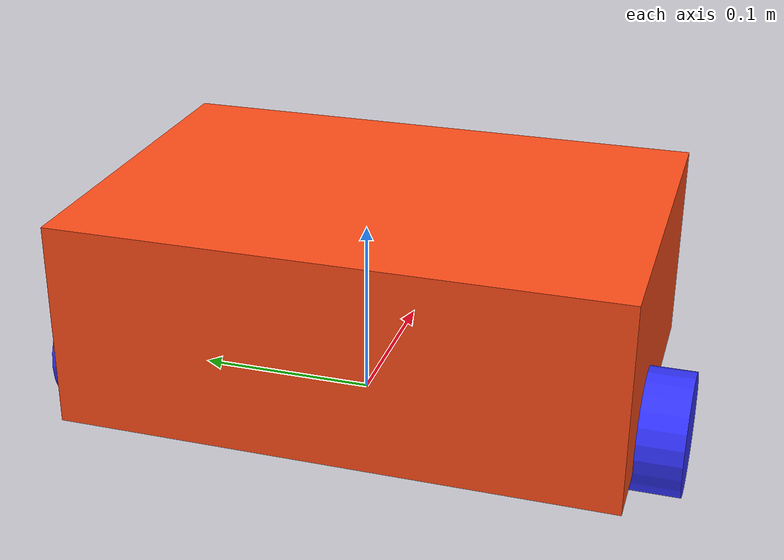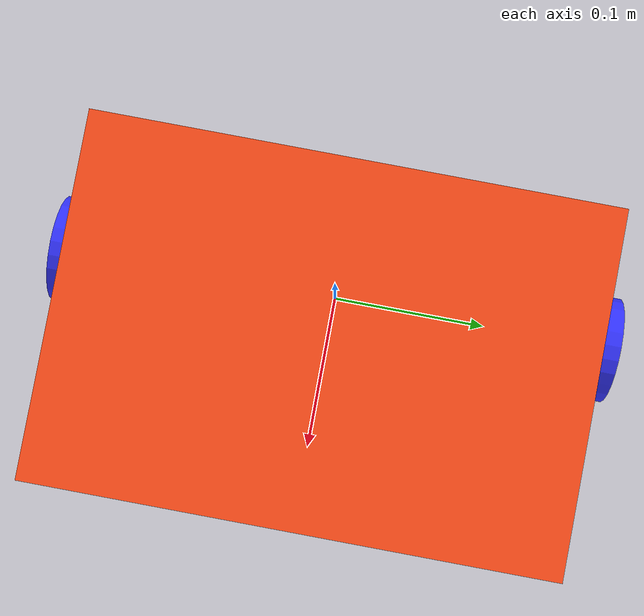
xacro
<?xml version="1.0"?>
<robot xmlns:xacro="http://www.ros.org/wiki/xacro" >

    <xacro:include filename="inertial_macros.xacro"/>

    <xacro:property name="chassis_length" value="0.22"/>
    <xacro:property name="chassis_width" value="0.32"/>
    <xacro:property name="chassis_height" value="0.12"/>
    <xacro:property name="chassis_mass" value="1.0"/>
    <xacro:property name="wheel_radius" value="0.035"/>
    <xacro:property name="wheel_thickness" value="0.04"/>
    <xacro:property name="wheel_mass" value="0.05"/>
    <xacro:property name="wheel_offset_x" value="${chassis_length / 3}"/>
    <xacro:property name="wheel_offset_y" value="0.166"/>
    <xacro:property name="wheel_offset_z" value="0.01"/>
    <xacro:property name="caster_wheel_left_radius" value="0.035"/>
    <xacro:property name="caster_wheel_left_mass" value="0.01"/>
    <xacro:property name="caster_wheel_left_offset_x" value="${chassis_length / 1.5}"/>
    <xacro:property name="caster_wheel_left_offset_z" value="${wheel_offset_z - wheel_radius + caster_wheel_left_radius}"/>
    <xacro:property name="caster_wheel_left_offset_y" value="${chassis_width / 3}"/>
    <xacro:property name="caster_wheel_right_radius" value="0.035"/>
    <xacro:property name="caster_wheel_right_mass" value="0.01"/>
    <xacro:property name="caster_wheel_right_offset_x" value="${chassis_length / 1.5}"/>
    <xacro:property name="caster_wheel_right_offset_z" value="${wheel_offset_z - wheel_radius + caster_wheel_right_radius}"/>
    <xacro:property name="caster_wheel_right_offset_y" value="${-chassis_width / 3}"/>

    <material name="white">
        <color rgba="1 1 1 1" />
    </material>

    <material name="orange">
        <color rgba="1 0.3 0.1 1"/>
    </material>

    <material name="blue">
        <color rgba="0.2 0.2 1 1"/>
    </material>

    <material name="black">
        <color rgba="0 0 0 1"/>
    </material>

    <material name="red">
        <color rgba="1 0 0 1"/>
    </material>

    <material name="green">
    <color rgba="0 1 0 1"/>
    </material>

    <!-- BASE LINK -->

    <link name="base_link">

    </link>

    <!-- CHASSIS LINK -->

    <joint name="chassis_joint" type="fixed">
        <parent link="base_link"/>
        <child link="chassis"/>
        <origin xyz="${-wheel_offset_x} 0 ${-wheel_offset_z}"/>
    </joint>

    <link name="chassis">
        <visual>
            <origin xyz="${chassis_length/2} 0 ${chassis_height/2}"/>
            <geometry>
                <box size="${chassis_length} ${chassis_width} ${chassis_height}"/>
            </geometry>
            <material name="orange"/>
        </visual>
        <collision>
            <origin xyz="${chassis_length/2} 0 ${chassis_height/2}"/>
            <geometry>
                <box size="${chassis_length} ${chassis_width} ${chassis_height}"/>
            </geometry>
        </collision>
        <xacro:inertial_box mass="0.5" x="${chassis_length}" y="${chassis_width}" z="${chassis_height}">
            <origin xyz="${chassis_length/2} 0 ${chassis_height/2}" rpy="0 0 0"/>
        </xacro:inertial_box>
    </link>

    <gazebo reference="chassis">
        <material>Gazebo/Orange</material>
    </gazebo>

    <!-- LEFT WHEEL LINK -->

    <joint name="left_wheel_joint" type="continuous">
        <parent link="base_link"/>
        <child link="left_wheel"/>
        <origin xyz="0 ${wheel_offset_y} 0" rpy="-${pi/2} 0 0" />
        <axis xyz="0 0 1"/>
    </joint>

    <link name="left_wheel">
        <visual>
            <geometry>
                <cylinder radius="${wheel_radius}" length="${wheel_thickness}"/>
            </geometry>
            <material name="blue"/>
        </visual>
        <collision>
            <geometry>
                <sphere radius="${wheel_radius}"/>
            </geometry>
        </collision>
        <xacro:inertial_cylinder mass="${wheel_mass}" length="${wheel_thickness}" radius="${wheel_radius}">
            <origin xyz="0 0 0" rpy="0 0 0"/>
        </xacro:inertial_cylinder>
    </link>

    <gazebo reference="left_wheel">
        <material>Gazebo/Blue</material>
    </gazebo>

    <!-- RIGHT WHEEL LINK -->

    <joint name="right_wheel_joint" type="continuous">
        <parent link="base_link"/>
        <child link="right_wheel"/>
        <origin xyz="0 ${-wheel_offset_y} 0" rpy="${pi/2} 0 0" />
        <axis xyz="0 0 -1"/>
    </joint>

    <link name="right_wheel">
        <visual>
            <geometry>
                <cylinder radius="${wheel_radius}" length="${wheel_thickness}"/>
            </geometry>
            <material name="blue"/>
        </visual>
        <collision>
            <geometry>
                <sphere radius="${wheel_radius}"/>
            </geometry>
        </collision>
        <xacro:inertial_cylinder mass="${wheel_mass}" length="${wheel_thickness}" radius="${wheel_radius}">
            <origin xyz="0 0 0" rpy="0 0 0"/>
        </xacro:inertial_cylinder>
    </link>

    <gazebo reference="right_wheel">
        <material>Gazebo/Blue</material>
    </gazebo>

    <!-- CASTER WHEEL LINK LEFT-->

    <joint name="caster_wheel_left_joint" type="fixed">
        <parent link="chassis"/>
        <child link="caster_wheel_left"/>
        <origin xyz="${caster_wheel_left_offset_x} ${caster_wheel_left_offset_y} ${caster_wheel_left_offset_z}"/>
    </joint>

    <link name="caster_wheel_left">
        <visual>
            <geometry>
                <sphere radius="${caster_wheel_left_radius}"/>
            </geometry>
            <material name="white"/>
        </visual>
        <collision>
            <geometry>
                <sphere radius="${caster_wheel_left_radius}"/>
            </geometry>
        </collision>
        <xacro:inertial_sphere mass="${caster_wheel_left_mass}" radius="${caster_wheel_left_radius}">
            <origin xyz="0 0 0" rpy="0 0 0"/>
        </xacro:inertial_sphere>
    </link>

    <gazebo reference="caster_wheel_left">
        <material>Gazebo/White</material>
        <mu1 value="0.001"/>
        <mu2 value="0.001"/>
    </gazebo>

    <!-- CASTER WHEEL LINK RIGHT-->

    <joint name="caster_wheel_right_joint" type="fixed">
        <parent link="chassis"/>
        <child link="caster_wheel_right"/>
        <origin xyz="${caster_wheel_right_offset_x} ${caster_wheel_right_offset_y} ${caster_wheel_right_offset_z}"/>
    </joint>

    <link name="caster_wheel_right">
        <visual>
            <geometry>
                <sphere radius="${caster_wheel_right_radius}"/>
            </geometry>
            <material name="white"/>
        </visual>
        <collision>
            <geometry>
                <sphere radius="${caster_wheel_right_radius}"/>
            </geometry>
        </collision>
        <xacro:inertial_sphere mass="${caster_wheel_right_mass}" radius="${caster_wheel_right_radius}">
            <origin xyz="0 0 0" rpy="0 0 0"/>
        </xacro:inertial_sphere>
    </link>

    <gazebo reference="caster_wheel_right">
        <material>Gazebo/White</material>
        <mu1 value="0.001"/>
        <mu2 value="0.001"/>
    </gazebo>

</robot>
